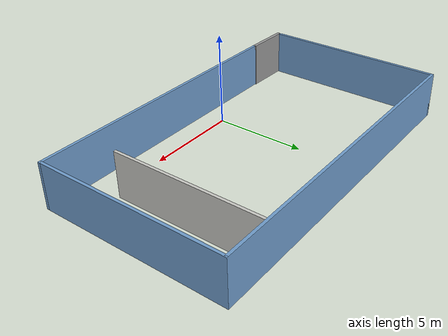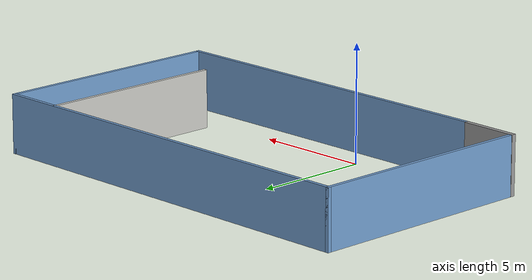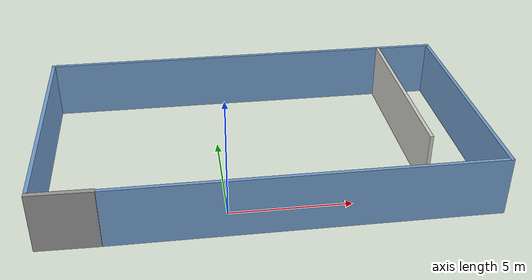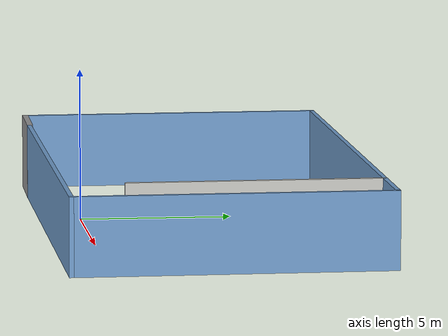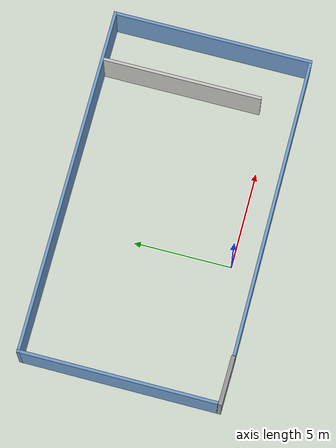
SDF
<?xml version='1.0'?>
<sdf version='1.7'>
  <model name='simple_hospital'>
    <pose>1.7365 3.76502 0 0 -0 0</pose>
    <link name='Door_0'>
      <collision name='Door_0_Collision'>
        <geometry>
          <box>
            <size>2.495 0.2 2.5</size>
          </box>
        </geometry>
        <pose>0 0 1.25 0 -0 0</pose>
      </collision>
      <visual name='Door_0_Visual'>
        <pose>0 0 1.25 0 -0 0</pose>
        <geometry>
          <box>
            <size>2.495 0.2 2.5</size>
          </box>
        </geometry>
        <material>
          <script>
            <uri>file://media/materials/scripts/gazebo.material</uri>
            <name>Gazebo/Grey</name>
          </script>
        </material>
      </visual>
      <pose>-7.75347 -5.00776 0 0 -0 3.12592</pose>
    </link>
    <link name='Wall_3'>
      <collision name='Wall_3_Collision'>
        <geometry>
          <box>
            <size>10 0.15 2.5</size>
          </box>
        </geometry>
        <pose>0 0 1.25 0 -0 0</pose>
      </collision>
      <visual name='Wall_3_Visual'>
        <pose>0 0 1.25 0 -0 0</pose>
        <geometry>
          <box>
            <size>10 0.15 2.5</size>
          </box>
        </geometry>
        <material>
          <script>
            <uri>file://media/materials/scripts/gazebo.material</uri>
            <name>Gazebo/Grey</name>
          </script>
          <ambient>0.447059 0.623529 0.811765 1</ambient>
        </material>
        <meta>
          <layer>0</layer>
        </meta>
      </visual>
      <pose>-8.925 0.125 0 0 -0 -1.5708</pose>
    </link>
    <link name='Wall_5'>
      <collision name='Wall_5_Collision'>
        <geometry>
          <box>
            <size>18 0.15 2.5</size>
          </box>
        </geometry>
        <pose>0 0 1.25 0 -0 0</pose>
      </collision>
      <visual name='Wall_5_Visual'>
        <pose>0 0 1.25 0 -0 0</pose>
        <geometry>
          <box>
            <size>18 0.15 2.5</size>
          </box>
        </geometry>
        <material>
          <script>
            <uri>file://media/materials/scripts/gazebo.material</uri>
            <name>Gazebo/Grey</name>
          </script>
          <ambient>0.447059 0.623529 0.811765 1</ambient>
        </material>
        <meta>
          <layer>0</layer>
        </meta>
      </visual>
      <pose>-0 5.05 0 0 -0 0</pose>
    </link>
    <link name='Wall_6'>
      <collision name='Wall_6_Collision'>
        <geometry>
          <box>
            <size>10.25 0.15 2.5</size>
          </box>
        </geometry>
        <pose>0 0 1.25 0 -0 0</pose>
      </collision>
      <visual name='Wall_6_Visual'>
        <pose>0 0 1.25 0 -0 0</pose>
        <geometry>
          <box>
            <size>10.25 0.15 2.5</size>
          </box>
        </geometry>
        <material>
          <script>
            <uri>file://media/materials/scripts/gazebo.material</uri>
            <name>Gazebo/Grey</name>
          </script>
          <ambient>0.447059 0.623529 0.811765 1</ambient>
        </material>
        <meta>
          <layer>0</layer>
        </meta>
      </visual>
      <pose>8.925 -0 0 0 -0 -1.5708</pose>
    </link>
    <link name='Wall_7'>
      <collision name='Wall_7_Collision'>
        <geometry>
          <box>
            <size>15.5 0.15 2.5</size>
          </box>
        </geometry>
        <pose>0 0 1.25 0 -0 0</pose>
      </collision>
      <visual name='Wall_7_Visual'>
        <pose>0 0 1.25 0 -0 0</pose>
        <geometry>
          <box>
            <size>15.5 0.15 2.5</size>
          </box>
        </geometry>
        <material>
          <script>
            <uri>file://media/materials/scripts/gazebo.material</uri>
            <name>Gazebo/Grey</name>
          </script>
          <ambient>0.447059 0.623529 0.811765 1</ambient>
        </material>
        <meta>
          <layer>0</layer>
        </meta>
      </visual>
      <pose>1.25 -5.05 0 0 -0 3.14159</pose>
    </link>
    <link name='Wall_9'>
      <collision name='Wall_9_Collision'>
        <geometry>
          <box>
            <size>8.25 0.15 2.5</size>
          </box>
        </geometry>
        <pose>0 0 1.25 0 -0 0</pose>
      </collision>
      <visual name='Wall_9_Visual'>
        <pose>0 0 1.25 0 -0 0</pose>
        <geometry>
          <box>
            <size>8.25 0.15 2.5</size>
          </box>
        </geometry>
        <material>
          <script>
            <uri>file://media/materials/scripts/gazebo.material</uri>
            <name>Gazebo/CeilingTiled</name>
          </script>
          <ambient>1 1 1 1</ambient>
        </material>
        <meta>
          <layer>0</layer>
        </meta>
      </visual>
      <pose>6.43971 0.976124 0 0 -0 -1.5708</pose>
    </link>
    <static>1</static>
  </model>
</sdf>
